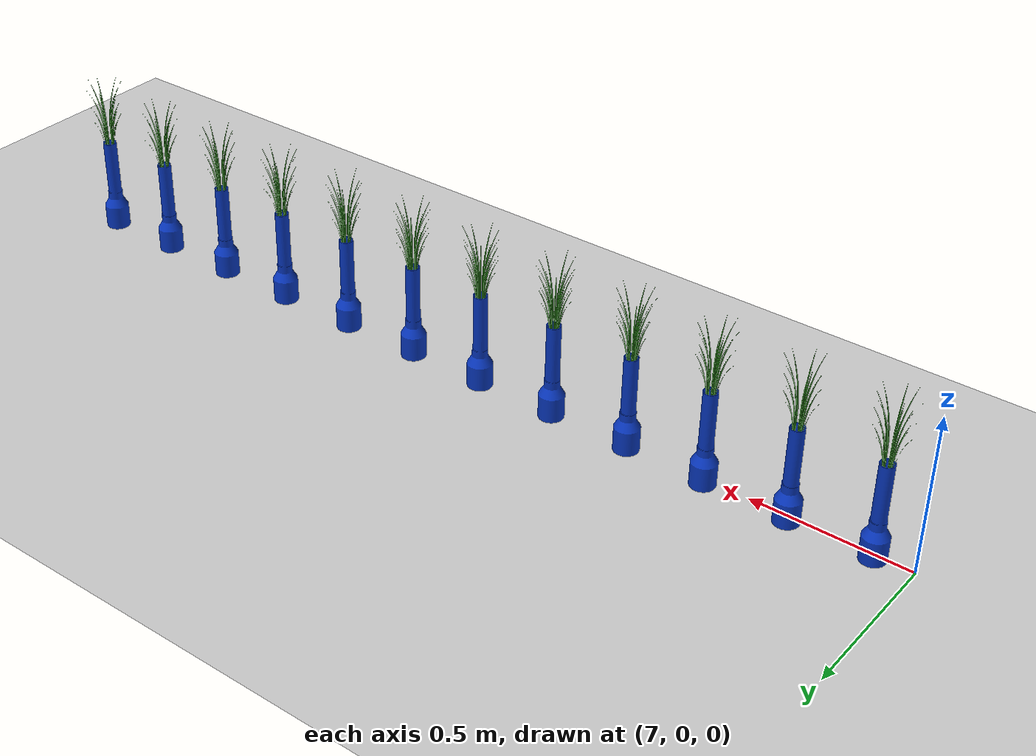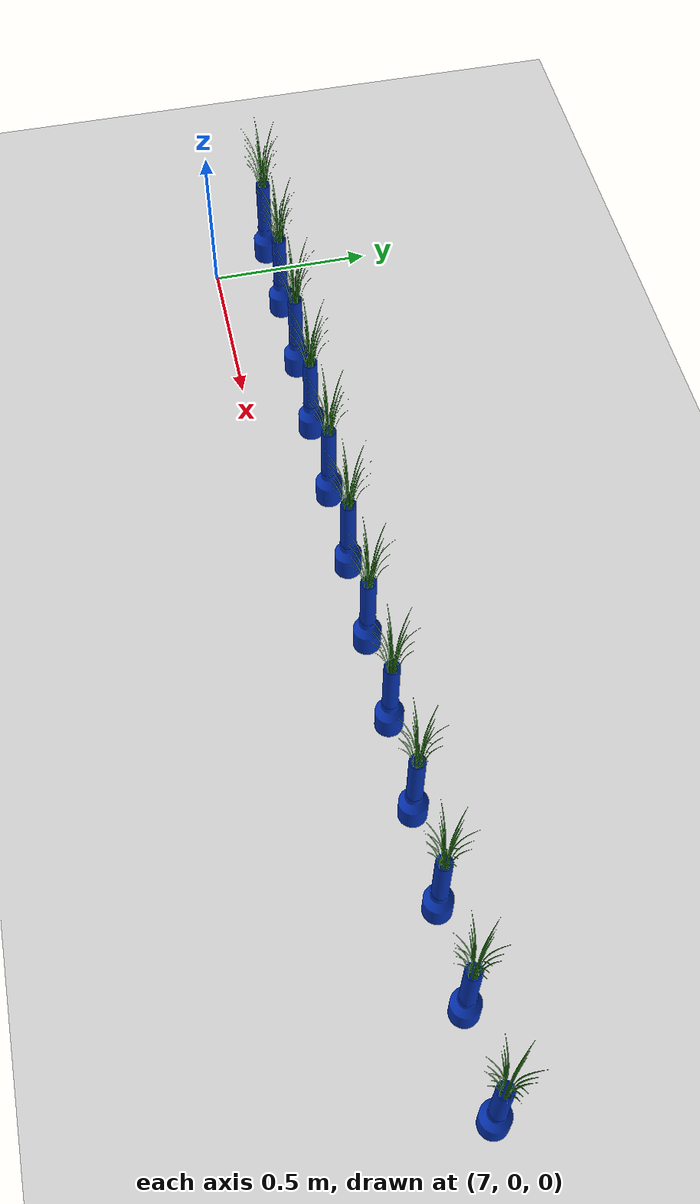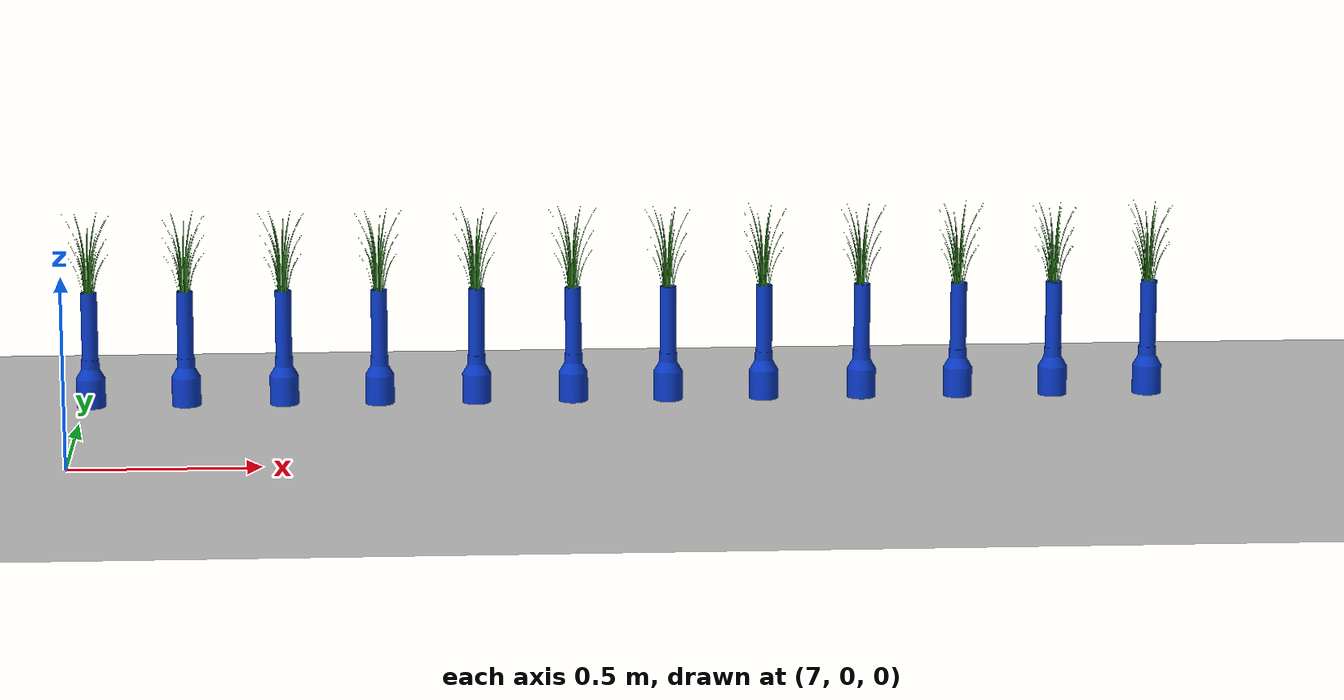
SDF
<sdf version="1.7">
 <world name="default">
  <light name="sun" type="directional">
   <pose>0 0 10 0 -0 0</pose>
   <diffuse>0.8 0.8 0.8 1</diffuse>
   <specular>0.2 0.2 0.2 1</specular>
   <attenuation>
    <range>1000</range>
    <constant>0.9</constant>
    <linear>0.01</linear>
    <quadratic>0.001</quadratic>
   </attenuation>
   <direction>-0.5 0.1 -0.9</direction>
   <spot><inner_angle>0</inner_angle><outer_angle>0</outer_angle><falloff>0</falloff></spot>
  </light>
  <model name="ground_plane">
   <static>1</static>
   <link name="link">
    <collision name="collision">
     <geometry><plane><normal>0 0 1</normal><size>100 100</size></plane></geometry>
     <surface>
      <contact><collide_bitmask>65535</collide_bitmask></contact>
      <friction><ode><mu>100</mu><mu2>50</mu2></ode></friction>
     </surface>
    </collision>
    <visual name="visual">
     <cast_shadows>0</cast_shadows>
     <geometry><plane><normal>0 0 1</normal><size>100 100</size></plane></geometry>
     <material>
      <script><uri>file://media/materials/scripts/gazebo.material</uri><name>Gazebo/Grey</name></script>
     </material>
    </visual>
   </link>
  </model>
  <gravity>0 0 -9.8</gravity>
  <magnetic_field>6e-06 2.3e-05 -4.2e-05</magnetic_field>
  <atmosphere type="adiabatic"/>
  <physics type="ode">
   <max_step_size>0.001</max_step_size>
   <real_time_factor>1</real_time_factor>
   <real_time_update_rate>1000</real_time_update_rate>
  </physics>
  <scene><ambient>0.4 0.4 0.4 1</ambient><background>0.7 0.7 0.7 1</background><shadows>1</shadows></scene>
  <audio><device>default</device></audio>
  <spherical_coordinates>
   <surface_model>EARTH_WGS84</surface_model>
   <latitude_deg>0</latitude_deg>
   <longitude_deg>0</longitude_deg>
   <elevation>0</elevation>
   <heading_deg>0</heading_deg>
  </spherical_coordinates>
  <model name="seed_blue">
   <link name="link_1">
    <inertial>
     <mass>0.001</mass>
     <inertia><ixx>0.07056</ixx><ixy>0</ixy><ixz>0</ixz><iyy>0.07056</iyy><iyz>0</iyz><izz>0.07056</izz></inertia>
    </inertial>
    <visual name="visual">
     <geometry>
      <mesh>
       <uri>/home/entity014/abu2024_ws/src/abu_description/worlds/seed_blue.dae</uri>
       <scale>1 1 1</scale>
      </mesh>
     </geometry>
    </visual>
    <collision name="collision">
     <geometry>
      <mesh>
       <uri>/home/entity014/abu2024_ws/src/abu_description/worlds/seed_blue.dae</uri>
       <scale>1 1 1</scale>
      </mesh>
     </geometry>
     <surface>
      <friction>
       <ode><mu>1</mu><mu2>1</mu2><fdir1>0 0 0</fdir1><slip1>0</slip1><slip2>0</slip2></ode>
       <torsional>
        <coefficient>1</coefficient>
        <patch_radius>0</patch_radius>
        <surface_radius>0</surface_radius>
        <use_patch_radius>1</use_patch_radius>
        <ode><slip>0</slip></ode>
       </torsional>
      </friction>
      <bounce><restitution_coefficient>0</restitution_coefficient><threshold>1e+06</threshold></bounce>
      <contact>
       <collide_without_contact>0</collide_without_contact>
       <collide_without_contact_bitmask>1</collide_without_contact_bitmask>
       <collide_bitmask>1</collide_bitmask>
       <ode>
        <soft_cfm>0</soft_cfm>
        <soft_erp>0.2</soft_erp>
        <kp>1e+13</kp>
        <kd>1</kd>
        <max_vel>0.01</max_vel>
        <min_depth>0</min_depth>
       </ode>
       <bullet>
        <split_impulse>1</split_impulse>
        <split_impulse_penetration_threshold>-0.01</split_impulse_penetration_threshold>
        <soft_cfm>0</soft_cfm>
        <soft_erp>0.2</soft_erp>
        <kp>1e+13</kp>
        <kd>1</kd>
       </bullet>
      </contact>
     </surface>
    </collision>
   </link>
   <static>0</static>
   <pose>7.05811 0.163129 0.244359 -1e-06 -2e-06 0.000195</pose>
  </model>
  <model name="seed_blue_0">
   <link name="link_1">
    <inertial>
     <mass>0.001</mass>
     <inertia><ixx>0.07056</ixx><ixy>0</ixy><ixz>0</ixz><iyy>0.07056</iyy><iyz>0</iyz><izz>0.07056</izz></inertia>
    </inertial>
    <visual name="visual">
     <geometry>
      <mesh>
       <uri>/home/entity014/abu2024_ws/src/abu_description/worlds/seed_blue.dae</uri>
       <scale>1 1 1</scale>
      </mesh>
     </geometry>
    </visual>
    <collision name="collision">
     <geometry>
      <mesh>
       <uri>/home/entity014/abu2024_ws/src/abu_description/worlds/seed_blue.dae</uri>
       <scale>1 1 1</scale>
      </mesh>
     </geometry>
     <surface>
      <friction>
       <ode><mu>1</mu><mu2>1</mu2><fdir1>0 0 0</fdir1><slip1>0</slip1><slip2>0</slip2></ode>
       <torsional>
        <coefficient>1</coefficient>
        <patch_radius>0</patch_radius>
        <surface_radius>0</surface_radius>
        <use_patch_radius>1</use_patch_radius>
        <ode><slip>0</slip></ode>
       </torsional>
      </friction>
      <bounce><restitution_coefficient>0</restitution_coefficient><threshold>1e+06</threshold></bounce>
      <contact>
       <collide_without_contact>0</collide_without_contact>
       <collide_without_contact_bitmask>1</collide_without_contact_bitmask>
       <collide_bitmask>1</collide_bitmask>
       <ode>
        <soft_cfm>0</soft_cfm>
        <soft_erp>0.2</soft_erp>
        <kp>1e+13</kp>
        <kd>1</kd>
        <max_vel>0.01</max_vel>
        <min_depth>0</min_depth>
       </ode>
       <bullet>
        <split_impulse>1</split_impulse>
        <split_impulse_penetration_threshold>-0.01</split_impulse_penetration_threshold>
        <soft_cfm>0</soft_cfm>
        <soft_erp>0.2</soft_erp>
        <kp>1e+13</kp>
        <kd>1</kd>
       </bullet>
      </contact>
     </surface>
    </collision>
   </link>
   <static>0</static>
   <pose>7.30361 0.167484 0.244369 5e-06 -3e-06 -0.016866</pose>
  </model>
  <model name="seed_blue_1">
   <link name="link_1">
    <inertial>
     <mass>0.001</mass>
     <inertia><ixx>0.07056</ixx><ixy>0</ixy><ixz>0</ixz><iyy>0.07056</iyy><iyz>0</iyz><izz>0.07056</izz></inertia>
    </inertial>
    <visual name="visual">
     <geometry>
      <mesh>
       <uri>/home/entity014/abu2024_ws/src/abu_description/worlds/seed_blue.dae</uri>
       <scale>1 1 1</scale>
      </mesh>
     </geometry>
    </visual>
    <collision name="collision">
     <geometry>
      <mesh>
       <uri>/home/entity014/abu2024_ws/src/abu_description/worlds/seed_blue.dae</uri>
       <scale>1 1 1</scale>
      </mesh>
     </geometry>
     <surface>
      <friction>
       <ode><mu>1</mu><mu2>1</mu2><fdir1>0 0 0</fdir1><slip1>0</slip1><slip2>0</slip2></ode>
       <torsional>
        <coefficient>1</coefficient>
        <patch_radius>0</patch_radius>
        <surface_radius>0</surface_radius>
        <use_patch_radius>1</use_patch_radius>
        <ode><slip>0</slip></ode>
       </torsional>
      </friction>
      <bounce><restitution_coefficient>0</restitution_coefficient><threshold>1e+06</threshold></bounce>
      <contact>
       <collide_without_contact>0</collide_without_contact>
       <collide_without_contact_bitmask>1</collide_without_contact_bitmask>
       <collide_bitmask>1</collide_bitmask>
       <ode>
        <soft_cfm>0</soft_cfm>
        <soft_erp>0.2</soft_erp>
        <kp>1e+13</kp>
        <kd>1</kd>
        <max_vel>0.01</max_vel>
        <min_depth>0</min_depth>
       </ode>
       <bullet>
        <split_impulse>1</split_impulse>
        <split_impulse_penetration_threshold>-0.01</split_impulse_penetration_threshold>
        <soft_cfm>0</soft_cfm>
        <soft_erp>0.2</soft_erp>
        <kp>1e+13</kp>
        <kd>1</kd>
       </bullet>
      </contact>
     </surface>
    </collision>
   </link>
   <static>0</static>
   <pose>7.556516 0.167483 0.244369 0 -5e-06 8.8e-05</pose>
  </model>
  <model name="seed_blue_2">
   <link name="link_1">
    <inertial>
     <mass>0.001</mass>
     <inertia><ixx>0.07056</ixx><ixy>0</ixy><ixz>0</ixz><iyy>0.07056</iyy><iyz>0</iyz><izz>0.07056</izz></inertia>
    </inertial>
    <visual name="visual">
     <geometry>
      <mesh>
       <uri>/home/entity014/abu2024_ws/src/abu_description/worlds/seed_blue.dae</uri>
       <scale>1 1 1</scale>
      </mesh>
     </geometry>
    </visual>
    <collision name="collision">
     <geometry>
      <mesh>
       <uri>/home/entity014/abu2024_ws/src/abu_description/worlds/seed_blue.dae</uri>
       <scale>1 1 1</scale>
      </mesh>
     </geometry>
     <surface>
      <friction>
       <ode><mu>1</mu><mu2>1</mu2><fdir1>0 0 0</fdir1><slip1>0</slip1><slip2>0</slip2></ode>
       <torsional>
        <coefficient>1</coefficient>
        <patch_radius>0</patch_radius>
        <surface_radius>0</surface_radius>
        <use_patch_radius>1</use_patch_radius>
        <ode><slip>0</slip></ode>
       </torsional>
      </friction>
      <bounce><restitution_coefficient>0</restitution_coefficient><threshold>1e+06</threshold></bounce>
      <contact>
       <collide_without_contact>0</collide_without_contact>
       <collide_without_contact_bitmask>1</collide_without_contact_bitmask>
       <collide_bitmask>1</collide_bitmask>
       <ode>
        <soft_cfm>0</soft_cfm>
        <soft_erp>0.2</soft_erp>
        <kp>1e+13</kp>
        <kd>1</kd>
        <max_vel>0.01</max_vel>
        <min_depth>0</min_depth>
       </ode>
       <bullet>
        <split_impulse>1</split_impulse>
        <split_impulse_penetration_threshold>-0.01</split_impulse_penetration_threshold>
        <soft_cfm>0</soft_cfm>
        <soft_erp>0.2</soft_erp>
        <kp>1e+13</kp>
        <kd>1</kd>
       </bullet>
      </contact>
     </surface>
    </collision>
   </link>
   <static>0</static>
   <pose>7.80373 0.163084 0.24436 7e-06 -8e-06 -4.4e-05</pose>
  </model>
  <model name="seed_blue_3">
   <link name="link_1">
    <inertial>
     <mass>0.001</mass>
     <inertia><ixx>0.07056</ixx><ixy>0</ixy><ixz>0</ixz><iyy>0.07056</iyy><iyz>0</iyz><izz>0.07056</izz></inertia>
    </inertial>
    <visual name="visual">
     <geometry>
      <mesh>
       <uri>/home/entity014/abu2024_ws/src/abu_description/worlds/seed_blue.dae</uri>
       <scale>1 1 1</scale>
      </mesh>
     </geometry>
    </visual>
    <collision name="collision">
     <geometry>
      <mesh>
       <uri>/home/entity014/abu2024_ws/src/abu_description/worlds/seed_blue.dae</uri>
       <scale>1 1 1</scale>
      </mesh>
     </geometry>
     <surface>
      <friction>
       <ode><mu>1</mu><mu2>1</mu2><fdir1>0 0 0</fdir1><slip1>0</slip1><slip2>0</slip2></ode>
       <torsional>
        <coefficient>1</coefficient>
        <patch_radius>0</patch_radius>
        <surface_radius>0</surface_radius>
        <use_patch_radius>1</use_patch_radius>
        <ode><slip>0</slip></ode>
       </torsional>
      </friction>
      <bounce><restitution_coefficient>0</restitution_coefficient><threshold>1e+06</threshold></bounce>
      <contact>
       <collide_without_contact>0</collide_without_contact>
       <collide_without_contact_bitmask>1</collide_without_contact_bitmask>
       <collide_bitmask>1</collide_bitmask>
       <ode>
        <soft_cfm>0</soft_cfm>
        <soft_erp>0.2</soft_erp>
        <kp>1e+13</kp>
        <kd>1</kd>
        <max_vel>0.01</max_vel>
        <min_depth>0</min_depth>
       </ode>
       <bullet>
        <split_impulse>1</split_impulse>
        <split_impulse_penetration_threshold>-0.01</split_impulse_penetration_threshold>
        <soft_cfm>0</soft_cfm>
        <soft_erp>0.2</soft_erp>
        <kp>1e+13</kp>
        <kd>1</kd>
       </bullet>
      </contact>
     </surface>
    </collision>
   </link>
   <static>0</static>
   <pose>8.05521 0.164024 0.24436 5e-06 -5e-06 0.000114</pose>
  </model>
  <model name="seed_blue_4">
   <link name="link_1">
    <inertial>
     <mass>0.001</mass>
     <inertia><ixx>0.07056</ixx><ixy>0</ixy><ixz>0</ixz><iyy>0.07056</iyy><iyz>0</iyz><izz>0.07056</izz></inertia>
    </inertial>
    <visual name="visual">
     <geometry>
      <mesh>
       <uri>/home/entity014/abu2024_ws/src/abu_description/worlds/seed_blue.dae</uri>
       <scale>1 1 1</scale>
      </mesh>
     </geometry>
    </visual>
    <collision name="collision">
     <geometry>
      <mesh>
       <uri>/home/entity014/abu2024_ws/src/abu_description/worlds/seed_blue.dae</uri>
       <scale>1 1 1</scale>
      </mesh>
     </geometry>
     <surface>
      <friction>
       <ode><mu>1</mu><mu2>1</mu2><fdir1>0 0 0</fdir1><slip1>0</slip1><slip2>0</slip2></ode>
       <torsional>
        <coefficient>1</coefficient>
        <patch_radius>0</patch_radius>
        <surface_radius>0</surface_radius>
        <use_patch_radius>1</use_patch_radius>
        <ode><slip>0</slip></ode>
       </torsional>
      </friction>
      <bounce><restitution_coefficient>0</restitution_coefficient><threshold>1e+06</threshold></bounce>
      <contact>
       <collide_without_contact>0</collide_without_contact>
       <collide_without_contact_bitmask>1</collide_without_contact_bitmask>
       <collide_bitmask>1</collide_bitmask>
       <ode>
        <soft_cfm>0</soft_cfm>
        <soft_erp>0.2</soft_erp>
        <kp>1e+13</kp>
        <kd>1</kd>
        <max_vel>0.01</max_vel>
        <min_depth>0</min_depth>
       </ode>
       <bullet>
        <split_impulse>1</split_impulse>
        <split_impulse_penetration_threshold>-0.01</split_impulse_penetration_threshold>
        <soft_cfm>0</soft_cfm>
        <soft_erp>0.2</soft_erp>
        <kp>1e+13</kp>
        <kd>1</kd>
       </bullet>
      </contact>
     </surface>
    </collision>
   </link>
   <static>0</static>
   <pose>8.30615 0.165429 0.24436 5e-06 -1e-06 -0.000482</pose>
  </model>
  <model name="seed_blue_5">
   <link name="link_1">
    <inertial>
     <mass>0.001</mass>
     <inertia><ixx>0.07056</ixx><ixy>0</ixy><ixz>0</ixz><iyy>0.07056</iyy><iyz>0</iyz><izz>0.07056</izz></inertia>
    </inertial>
    <visual name="visual">
     <geometry>
      <mesh>
       <uri>/home/entity014/abu2024_ws/src/abu_description/worlds/seed_blue.dae</uri>
       <scale>1 1 1</scale>
      </mesh>
     </geometry>
    </visual>
    <collision name="collision">
     <geometry>
      <mesh>
       <uri>/home/entity014/abu2024_ws/src/abu_description/worlds/seed_blue.dae</uri>
       <scale>1 1 1</scale>
      </mesh>
     </geometry>
     <surface>
      <friction>
       <ode><mu>1</mu><mu2>1</mu2><fdir1>0 0 0</fdir1><slip1>0</slip1><slip2>0</slip2></ode>
       <torsional>
        <coefficient>1</coefficient>
        <patch_radius>0</patch_radius>
        <surface_radius>0</surface_radius>
        <use_patch_radius>1</use_patch_radius>
        <ode><slip>0</slip></ode>
       </torsional>
      </friction>
      <bounce><restitution_coefficient>0</restitution_coefficient><threshold>1e+06</threshold></bounce>
      <contact>
       <collide_without_contact>0</collide_without_contact>
       <collide_without_contact_bitmask>1</collide_without_contact_bitmask>
       <collide_bitmask>1</collide_bitmask>
       <ode>
        <soft_cfm>0</soft_cfm>
        <soft_erp>0.2</soft_erp>
        <kp>1e+13</kp>
        <kd>1</kd>
        <max_vel>0.01</max_vel>
        <min_depth>0</min_depth>
       </ode>
       <bullet>
        <split_impulse>1</split_impulse>
        <split_impulse_penetration_threshold>-0.01</split_impulse_penetration_threshold>
        <soft_cfm>0</soft_cfm>
        <soft_erp>0.2</soft_erp>
        <kp>1e+13</kp>
        <kd>1</kd>
       </bullet>
      </contact>
     </surface>
    </collision>
   </link>
   <static>0</static>
   <pose>8.5531 0.164072 0.24436 6e-06 4e-06 8.5e-05</pose>
  </model>
  <model name="seed_blue_6">
   <link name="link_1">
    <inertial>
     <mass>0.001</mass>
     <inertia><ixx>0.07056</ixx><ixy>0</ixy><ixz>0</ixz><iyy>0.07056</iyy><iyz>0</iyz><izz>0.07056</izz></inertia>
    </inertial>
    <visual name="visual">
     <geometry>
      <mesh>
       <uri>/home/entity014/abu2024_ws/src/abu_description/worlds/seed_blue.dae</uri>
       <scale>1 1 1</scale>
      </mesh>
     </geometry>
    </visual>
    <collision name="collision">
     <geometry>
      <mesh>
       <uri>/home/entity014/abu2024_ws/src/abu_description/worlds/seed_blue.dae</uri>
       <scale>1 1 1</scale>
      </mesh>
     </geometry>
     <surface>
      <friction>
       <ode><mu>1</mu><mu2>1</mu2><fdir1>0 0 0</fdir1><slip1>0</slip1><slip2>0</slip2></ode>
       <torsional>
        <coefficient>1</coefficient>
        <patch_radius>0</patch_radius>
        <surface_radius>0</surface_radius>
        <use_patch_radius>1</use_patch_radius>
        <ode><slip>0</slip></ode>
       </torsional>
      </friction>
      <bounce><restitution_coefficient>0</restitution_coefficient><threshold>1e+06</threshold></bounce>
      <contact>
       <collide_without_contact>0</collide_without_contact>
       <collide_without_contact_bitmask>1</collide_without_contact_bitmask>
       <collide_bitmask>1</collide_bitmask>
       <ode>
        <soft_cfm>0</soft_cfm>
        <soft_erp>0.2</soft_erp>
        <kp>1e+13</kp>
        <kd>1</kd>
        <max_vel>0.01</max_vel>
        <min_depth>0</min_depth>
       </ode>
       <bullet>
        <split_impulse>1</split_impulse>
        <split_impulse_penetration_threshold>-0.01</split_impulse_penetration_threshold>
        <soft_cfm>0</soft_cfm>
        <soft_erp>0.2</soft_erp>
        <kp>1e+13</kp>
        <kd>1</kd>
       </bullet>
      </contact>
     </surface>
    </collision>
   </link>
   <static>0</static>
   <pose>8.80363 0.16613 0.244369 3e-06 -6e-06 0.000968</pose>
  </model>
  <model name="seed_blue_7">
   <link name="link_1">
    <inertial>
     <mass>0.001</mass>
     <inertia><ixx>0.07056</ixx><ixy>0</ixy><ixz>0</ixz><iyy>0.07056</iyy><iyz>0</iyz><izz>0.07056</izz></inertia>
    </inertial>
    <visual name="visual">
     <geometry>
      <mesh>
       <uri>/home/entity014/abu2024_ws/src/abu_description/worlds/seed_blue.dae</uri>
       <scale>1 1 1</scale>
      </mesh>
     </geometry>
    </visual>
    <collision name="collision">
     <geometry>
      <mesh>
       <uri>/home/entity014/abu2024_ws/src/abu_description/worlds/seed_blue.dae</uri>
       <scale>1 1 1</scale>
      </mesh>
     </geometry>
     <surface>
      <friction>
       <ode><mu>1</mu><mu2>1</mu2><fdir1>0 0 0</fdir1><slip1>0</slip1><slip2>0</slip2></ode>
       <torsional>
        <coefficient>1</coefficient>
        <patch_radius>0</patch_radius>
        <surface_radius>0</surface_radius>
        <use_patch_radius>1</use_patch_radius>
        <ode><slip>0</slip></ode>
       </torsional>
      </friction>
      <bounce><restitution_coefficient>0</restitution_coefficient><threshold>1e+06</threshold></bounce>
      <contact>
       <collide_without_contact>0</collide_without_contact>
       <collide_without_contact_bitmask>1</collide_without_contact_bitmask>
       <collide_bitmask>1</collide_bitmask>
       <ode>
        <soft_cfm>0</soft_cfm>
        <soft_erp>0.2</soft_erp>
        <kp>1e+13</kp>
        <kd>1</kd>
        <max_vel>0.01</max_vel>
        <min_depth>0</min_depth>
       </ode>
       <bullet>
        <split_impulse>1</split_impulse>
        <split_impulse_penetration_threshold>-0.01</split_impulse_penetration_threshold>
        <soft_cfm>0</soft_cfm>
        <soft_erp>0.2</soft_erp>
        <kp>1e+13</kp>
        <kd>1</kd>
       </bullet>
      </contact>
     </surface>
    </collision>
   </link>
   <static>0</static>
   <pose>9.05932 0.167276 0.24436 0 -7e-06 -0.000164</pose>
  </model>
  <model name="seed_blue_8">
   <link name="link_1">
    <inertial>
     <mass>0.001</mass>
     <inertia><ixx>0.07056</ixx><ixy>0</ixy><ixz>0</ixz><iyy>0.07056</iyy><iyz>0</iyz><izz>0.07056</izz></inertia>
    </inertial>
    <visual name="visual">
     <geometry>
      <mesh>
       <uri>/home/entity014/abu2024_ws/src/abu_description/worlds/seed_blue.dae</uri>
       <scale>1 1 1</scale>
      </mesh>
     </geometry>
    </visual>
    <collision name="collision">
     <geometry>
      <mesh>
       <uri>/home/entity014/abu2024_ws/src/abu_description/worlds/seed_blue.dae</uri>
       <scale>1 1 1</scale>
      </mesh>
     </geometry>
     <surface>
      <friction>
       <ode><mu>1</mu><mu2>1</mu2><fdir1>0 0 0</fdir1><slip1>0</slip1><slip2>0</slip2></ode>
       <torsional>
        <coefficient>1</coefficient>
        <patch_radius>0</patch_radius>
        <surface_radius>0</surface_radius>
        <use_patch_radius>1</use_patch_radius>
        <ode><slip>0</slip></ode>
       </torsional>
      </friction>
      <bounce><restitution_coefficient>0</restitution_coefficient><threshold>1e+06</threshold></bounce>
      <contact>
       <collide_without_contact>0</collide_without_contact>
       <collide_without_contact_bitmask>1</collide_without_contact_bitmask>
       <collide_bitmask>1</collide_bitmask>
       <ode>
        <soft_cfm>0</soft_cfm>
        <soft_erp>0.2</soft_erp>
        <kp>1e+13</kp>
        <kd>1</kd>
        <max_vel>0.01</max_vel>
        <min_depth>0</min_depth>
       </ode>
       <bullet>
        <split_impulse>1</split_impulse>
        <split_impulse_penetration_threshold>-0.01</split_impulse_penetration_threshold>
        <soft_cfm>0</soft_cfm>
        <soft_erp>0.2</soft_erp>
        <kp>1e+13</kp>
        <kd>1</kd>
       </bullet>
      </contact>
     </surface>
    </collision>
   </link>
   <static>0</static>
   <pose>9.31235 0.166827 0.24437 1e-05 -1.1e-05 0.000133</pose>
  </model>
  <model name="seed_blue_9">
   <link name="link_1">
    <inertial>
     <mass>0.001</mass>
     <inertia><ixx>0.07056</ixx><ixy>0</ixy><ixz>0</ixz><iyy>0.07056</iyy><iyz>0</iyz><izz>0.07056</izz></inertia>
    </inertial>
    <visual name="visual">
     <geometry>
      <mesh>
       <uri>/home/entity014/abu2024_ws/src/abu_description/worlds/seed_blue.dae</uri>
       <scale>1 1 1</scale>
      </mesh>
     </geometry>
    </visual>
    <collision name="collision">
     <geometry>
      <mesh>
       <uri>/home/entity014/abu2024_ws/src/abu_description/worlds/seed_blue.dae</uri>
       <scale>1 1 1</scale>
      </mesh>
     </geometry>
     <surface>
      <friction>
       <ode><mu>1</mu><mu2>1</mu2><fdir1>0 0 0</fdir1><slip1>0</slip1><slip2>0</slip2></ode>
       <torsional>
        <coefficient>1</coefficient>
        <patch_radius>0</patch_radius>
        <surface_radius>0</surface_radius>
        <use_patch_radius>1</use_patch_radius>
        <ode><slip>0</slip></ode>
       </torsional>
      </friction>
      <bounce><restitution_coefficient>0</restitution_coefficient><threshold>1e+06</threshold></bounce>
      <contact>
       <collide_without_contact>0</collide_without_contact>
       <collide_without_contact_bitmask>1</collide_without_contact_bitmask>
       <collide_bitmask>1</collide_bitmask>
       <ode>
        <soft_cfm>0</soft_cfm>
        <soft_erp>0.2</soft_erp>
        <kp>1e+13</kp>
        <kd>1</kd>
        <max_vel>0.01</max_vel>
        <min_depth>0</min_depth>
       </ode>
       <bullet>
        <split_impulse>1</split_impulse>
        <split_impulse_penetration_threshold>-0.01</split_impulse_penetration_threshold>
        <soft_cfm>0</soft_cfm>
        <soft_erp>0.2</soft_erp>
        <kp>1e+13</kp>
        <kd>1</kd>
       </bullet>
      </contact>
     </surface>
    </collision>
   </link>
   <static>0</static>
   <pose>9.56235 0.167683 0.244359 3e-06 2e-06 -0.000235</pose>
  </model>
  <model name="seed_blue_10">
   <link name="link_1">
    <inertial>
     <mass>0.001</mass>
     <inertia><ixx>0.07056</ixx><ixy>0</ixy><ixz>0</ixz><iyy>0.07056</iyy><iyz>0</iyz><izz>0.07056</izz></inertia>
    </inertial>
    <visual name="visual">
     <geometry>
      <mesh>
       <uri>/home/entity014/abu2024_ws/src/abu_description/worlds/seed_blue.dae</uri>
       <scale>1 1 1</scale>
      </mesh>
     </geometry>
    </visual>
    <collision name="collision">
     <geometry>
      <mesh>
       <uri>/home/entity014/abu2024_ws/src/abu_description/worlds/seed_blue.dae</uri>
       <scale>1 1 1</scale>
      </mesh>
     </geometry>
     <surface>
      <friction>
       <ode><mu>1</mu><mu2>1</mu2><fdir1>0 0 0</fdir1><slip1>0</slip1><slip2>0</slip2></ode>
       <torsional>
        <coefficient>1</coefficient>
        <patch_radius>0</patch_radius>
        <surface_radius>0</surface_radius>
        <use_patch_radius>1</use_patch_radius>
        <ode><slip>0</slip></ode>
       </torsional>
      </friction>
      <bounce><restitution_coefficient>0</restitution_coefficient><threshold>1e+06</threshold></bounce>
      <contact>
       <collide_without_contact>0</collide_without_contact>
       <collide_without_contact_bitmask>1</collide_without_contact_bitmask>
       <collide_bitmask>1</collide_bitmask>
       <ode>
        <soft_cfm>0</soft_cfm>
        <soft_erp>0.2</soft_erp>
        <kp>1e+13</kp>
        <kd>1</kd>
        <max_vel>0.01</max_vel>
        <min_depth>0</min_depth>
       </ode>
       <bullet>
        <split_impulse>1</split_impulse>
        <split_impulse_penetration_threshold>-0.01</split_impulse_penetration_threshold>
        <soft_cfm>0</soft_cfm>
        <soft_erp>0.2</soft_erp>
        <kp>1e+13</kp>
        <kd>1</kd>
       </bullet>
      </contact>
     </surface>
    </collision>
   </link>
   <static>0</static>
   <pose>9.81184 0.168238 0.244369 3e-06 -2e-06 -6e-05</pose>
  </model>
  <plugin name="gazebo_link_attacher" filename="libgazebo_link_attacher.so"/>
 </world>
</sdf>
